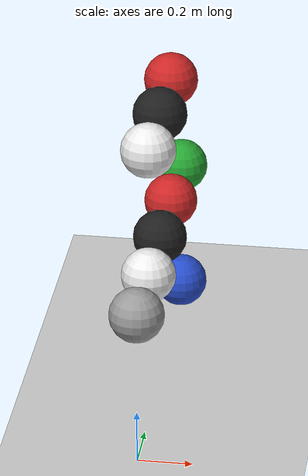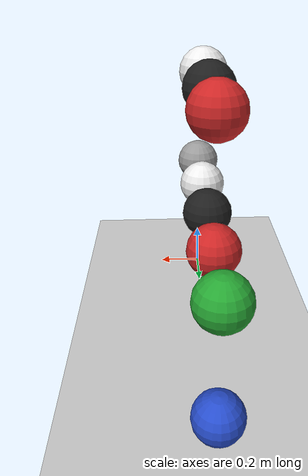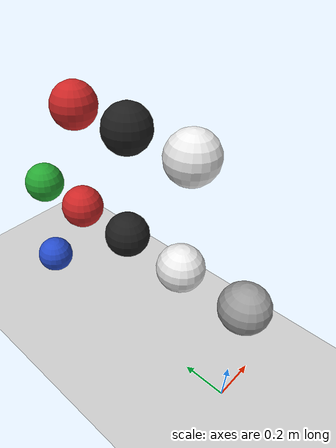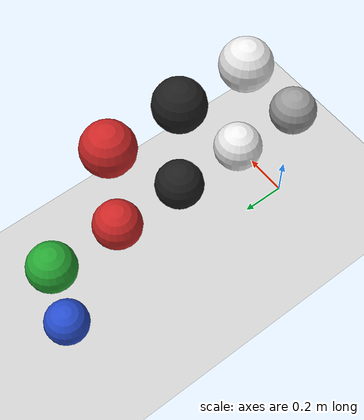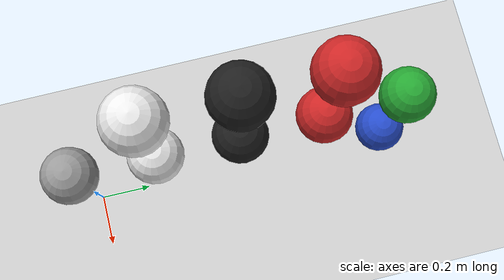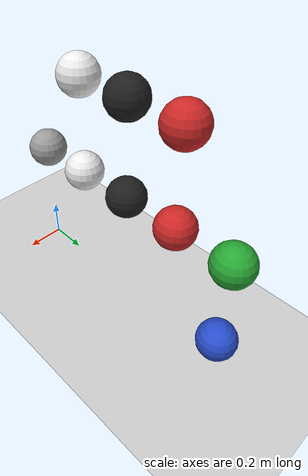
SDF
<?xml version="1.0" ?>
<sdf version="1.4">
  <world name="default">
    <scene>
      <ambient>0.5 0.5 0.5 1</ambient>
      <background>0.5 0.5 0.5 1</background>
      <shadows>false</shadows>
    </scene>
    <include>
      <uri>model://sun</uri>
    </include>
    <include>
      <uri>model://ground_plane</uri>
    </include>
    <physics type="ode">
      <gravity>0.0 0.0 -10.0</gravity>
      <ode>
        <solver>
          <type>quick</type>
          <iters>100</iters>
          <sor>1.3</sor>
        </solver>
        <constraints>
          <cfm>0.0</cfm>
          <erp>1.0</erp>
          <contact_max_correcting_vel>1000.0</contact_max_correcting_vel>
          <contact_surface_layer>0.0</contact_surface_layer>
        </constraints>
      </ode>
      <real_time_update_rate>300</real_time_update_rate>
      <max_step_size>0.001</max_step_size>
    </physics>
    <model name="model_0">
      <pose>0.0 0.0 1.1 0 0.0 0.0</pose>
      <link name="link_1">
        <velocity_decay>
          <linear>0.0</linear>
          <angular>0.0</angular>
        </velocity_decay>
        <pose>0.0 0.0 0.0 0.0 0.0 0.0</pose>
        <inertial>
          <pose>0.0 0.0 -0.5 0.0 0.0 0.0</pose>
          <inertia>
            <ixx>0.01</ixx>
            <ixy>0.0</ixy>
            <ixz>0.0</ixz>
            <iyy>0.01</iyy>
            <iyz>0.0</iyz>
            <izz>0.01</izz>
          </inertia>
          <mass>1.0</mass>
        </inertial>
        <visual name="visual_sphere">
          <pose>0.0 0.0 -0.5 0.0 0.0 0.0</pose>
          <geometry>
            <sphere>
              <radius>0.1</radius>
            </sphere>
          </geometry>
          <material>
            <script><uri>file://media/materials/scripts/gazebo.material</uri><name>Gazebo/Grey</name></script>
          </material>
        </visual>
        <collision name="collision_sphere">
          <pose>0.0 0.0 -0.5 0.0 0.0 0.0</pose>
          <max_contacts>250</max_contacts>
          <geometry>
            <sphere>
              <radius>0.1</radius>
            </sphere>
          </geometry>
        </collision>
        <gravity>true</gravity>
        <self_collide>true</self_collide>
        <kinematic>false</kinematic>
      </link>
      <joint name="joint_0" type="prismatic">
        <parent>world</parent>
        <child>link_1</child>
        <pose>0.0 0.0 0.0 0.0 0.0 0.0</pose>
        <axis>
          <limit>
            <lower>0</lower>
            <upper>0</upper>
          </limit>
          <xyz>0.0 0.0 1.0</xyz>
        </axis>
        <physics>
          <ode>
            <limit>
              <cfm>0.0</cfm>
              <erp>0.2</erp>
            </limit>
          </ode>
        </physics>
      </joint>
      <static>false</static>
    </model>
    <model name="model_1_prismatic">
      <pose>0.0 0.3 1.1 0 0.0 0.0</pose>
      <link name="link_1">
        <velocity_decay>
          <linear>0.0</linear>
          <angular>0.0</angular>
        </velocity_decay>
        <pose>0.0 0.0 0.0 0.0 0.0 0.0</pose>
        <inertial>
          <pose>0.0 0.0 -0.5 0.0 0.0 0.0</pose>
          <inertia>
            <ixx>0.01</ixx>
            <ixy>0.0</ixy>
            <ixz>0.0</ixz>
            <iyy>0.01</iyy>
            <iyz>0.0</iyz>
            <izz>0.01</izz>
          </inertia>
          <mass>1.0</mass>
        </inertial>
        <visual name="visual_sphere">
          <pose>0.0 0.0 -0.5 0.0 0.0 0.0</pose>
          <geometry>
            <sphere>
              <radius>0.1</radius>
            </sphere>
          </geometry>
          <material>
            <script><uri>file://media/materials/scripts/gazebo.material</uri><name>Gazebo/White</name></script>
          </material>
        </visual>
        <collision name="collision_sphere">
          <pose>0.0 0.0 -0.5 0.0 0.0 0.0</pose>
          <max_contacts>250</max_contacts>
          <geometry>
            <sphere>
              <radius>0.1</radius>
            </sphere>
          </geometry>
        </collision>
        <gravity>true</gravity>
        <self_collide>true</self_collide>
        <kinematic>false</kinematic>
      </link>
      <joint name="joint_0" type="prismatic">
        <parent>world</parent>
        <child>link_1</child>
        <pose>0.0 0.0 0.0 0.0 0.0 0.0</pose>
        <axis>
          <limit>
            <lower>0.0</lower>
            <upper>0.0</upper>
          </limit>
          <xyz>0.0 0.0 1.0</xyz>
        </axis>
        <physics>
          <ode>
            <limit>
              <cfm>3.0</cfm>
              <erp>1.0</erp>
            </limit>
          </ode>
        </physics>
      </joint>
      <static>false</static>
    </model>
    <model name="model_1_revolute">
      <pose>-1.0 0.3 1.1 0 0.0 0.0</pose>
      <link name="link_1">
        <velocity_decay>
          <linear>0.0</linear>
          <angular>0.0</angular>
        </velocity_decay>
        <pose>0.0 0.0 0.0 0.0 0.0 0.0</pose>
        <inertial>
          <pose>1.0 0.0 0 0.0 0.0 0.0</pose>
          <inertia>
            <ixx>0.0001</ixx>
            <ixy>0.0</ixy>
            <ixz>0.0</ixz>
            <iyy>0.0001</iyy>
            <iyz>0.0</iyz>
            <izz>0.0001</izz>
          </inertia>
          <mass>1.0</mass>
        </inertial>
        <visual name="visual_sphere">
          <pose>1.0 0.0 0 0.0 0.0 0.0</pose>
          <geometry>
            <sphere>
              <radius>0.1</radius>
            </sphere>
          </geometry>
          <material>
            <script><uri>file://media/materials/scripts/gazebo.material</uri><name>Gazebo/White</name></script>
          </material>
        </visual>
        <collision name="collision_sphere">
          <pose>1.0 0.0 0 0.0 0.0 0.0</pose>
          <max_contacts>250</max_contacts>
          <geometry>
            <sphere>
              <radius>0.1</radius>
            </sphere>
          </geometry>
        </collision>
        <gravity>true</gravity>
        <self_collide>true</self_collide>
        <kinematic>false</kinematic>
      </link>
      <joint name="joint_0" type="revolute">
        <parent>world</parent>
        <child>link_1</child>
        <pose>0.0 0.0 0.0 0.0 0.0 0.0</pose>
        <axis>
          <limit>
            <lower>0.0</lower>
            <upper>0.0</upper>
          </limit>
          <xyz>0.0 1.0 0.0</xyz>
        </axis>
        <physics>
          <ode>
            <limit>
              <cfm>3.0</cfm>
              <erp>1.0</erp>
            </limit>
          </ode>
        </physics>
      </joint>
      <static>false</static>
    </model>
    <model name="model_2_prismatic">
      <pose>0.0 0.6 1.1 0 0.0 0.0</pose>
      <link name="link_1">
        <pose>0.0 0.0 0.0 0.0 0.0 0.0</pose>
        <inertial>
          <pose>0.0 0.0 -0.5 0.0 0.0 0.0</pose>
          <inertia>
            <ixx>0.01</ixx>
            <ixy>0.0</ixy>
            <ixz>0.0</ixz>
            <iyy>0.01</iyy>
            <iyz>0.0</iyz>
            <izz>0.01</izz>
          </inertia>
          <mass>1.0</mass>
        </inertial>
        <visual name="visual_sphere">
          <pose>0.0 0.0 -0.5 0.0 0.0 0.0</pose>
          <geometry>
            <sphere>
              <radius>0.1</radius>
            </sphere>
          </geometry>
          <material>
            <script><uri>file://media/materials/scripts/gazebo.material</uri><name>Gazebo/FlatBlack</name></script>
          </material>
        </visual>
        <collision name="collision_sphere">
          <pose>0.0 0.0 -0.5 0.0 0.0 0.0</pose>
          <max_contacts>250</max_contacts>
          <geometry>
            <sphere>
              <radius>0.1</radius>
            </sphere>
          </geometry>
        </collision>
        <gravity>true</gravity>
        <self_collide>true</self_collide>
        <kinematic>false</kinematic>
      </link>
      <joint name="joint_0" type="prismatic">
        <parent>world</parent>
        <child>link_1</child>
        <pose>0.0 0.0 0.0 0.0 0.0 0.0</pose>
        <axis>
          <limit>
            <lower>0</lower>
            <upper>0</upper>
          </limit>
          <xyz>0.0 0.0 1.0</xyz>
        </axis>
        <physics>
          <ode>
            <limit>
              <cfm>6.0</cfm>
              <erp>1.0</erp>
            </limit>
          </ode>
        </physics>
      </joint>
      <static>false</static>
    </model>
    <model name="model_2_revolute">
      <pose>-1.0 0.6 1.1 0 0.0 0.0</pose>
      <link name="link_1">
        <pose>0.0 0.0 0.0 0.0 0.0 0.0</pose>
        <inertial>
          <pose>1.0 0.0 0 0.0 0.0 0.0</pose>
          <inertia>
            <ixx>0.01</ixx>
            <ixy>0.0</ixy>
            <ixz>0.0</ixz>
            <iyy>0.01</iyy>
            <iyz>0.0</iyz>
            <izz>0.01</izz>
          </inertia>
          <mass>1.0</mass>
        </inertial>
        <visual name="visual_sphere">
          <pose>1.0 0.0 0 0.0 0.0 0.0</pose>
          <geometry>
            <sphere>
              <radius>0.1</radius>
            </sphere>
          </geometry>
          <material>
            <script><uri>file://media/materials/scripts/gazebo.material</uri><name>Gazebo/FlatBlack</name></script>
          </material>
        </visual>
        <collision name="collision_sphere">
          <pose>1.0 0.0 0 0.0 0.0 0.0</pose>
          <max_contacts>250</max_contacts>
          <geometry>
            <sphere>
              <radius>0.1</radius>
            </sphere>
          </geometry>
        </collision>
        <gravity>true</gravity>
        <self_collide>true</self_collide>
        <kinematic>false</kinematic>
      </link>
      <joint name="joint_0" type="revolute">
        <parent>world</parent>
        <child>link_1</child>
        <pose>0.0 0.0 0.0 0.0 0.0 0.0</pose>
        <axis>
          <limit>
            <lower>0</lower>
            <upper>0</upper>
          </limit>
          <xyz>0.0 1.0 0.0</xyz>
        </axis>
        <physics>
          <ode>
            <limit>
              <cfm>6.0</cfm>
              <erp>1.0</erp>
            </limit>
          </ode>
        </physics>
      </joint>
      <static>false</static>
    </model>
    <model name="model_3_prismatic">
      <pose>0.0 0.9 1.1 0 0.0 0.0</pose>
      <link name="link_1">
        <pose>0.0 0.0 0.0 0.0 0.0 0.0</pose>
        <inertial>
          <pose>0.0 0.0 -0.5 0.0 0.0 0.0</pose>
          <inertia>
            <ixx>0.01</ixx>
            <ixy>0.0</ixy>
            <ixz>0.0</ixz>
            <iyy>0.01</iyy>
            <iyz>0.0</iyz>
            <izz>0.01</izz>
          </inertia>
          <mass>1.0</mass>
        </inertial>
        <visual name="visual_sphere">
          <pose>0.0 0.0 -0.5 0.0 0.0 0.0</pose>
          <geometry>
            <sphere>
              <radius>0.1</radius>
            </sphere>
          </geometry>
          <material>
            <script><uri>file://media/materials/scripts/gazebo.material</uri><name>Gazebo/Red</name></script>
          </material>
        </visual>
        <collision name="collision_sphere">
          <pose>0.0 0.0 -0.5 0.0 0.0 0.0</pose>
          <max_contacts>250</max_contacts>
          <geometry>
            <sphere>
              <radius>0.1</radius>
            </sphere>
          </geometry>
        </collision>
        <gravity>true</gravity>
        <self_collide>true</self_collide>
        <kinematic>false</kinematic>
      </link>
      <joint name="joint_0" type="prismatic">
        <parent>world</parent>
        <child>link_1</child>
        <pose>0.0 0.0 0.0 0.0 0.0 0.0</pose>
        <axis>
          <limit>
            <lower>0</lower>
            <upper>0</upper>
          </limit>
          <xyz>0.0 0.0 1.0</xyz>
        </axis>
        <physics>
          <ode>
            <limit>
              <cfm>9.0</cfm>
              <erp>1.0</erp>
            </limit>
          </ode>
        </physics>
      </joint>
      <static>false</static>
    </model>
    <model name="model_3_revolute">
      <pose>-1.0 0.9 1.1 0 0.0 0.0</pose>
      <link name="link_1">
        <pose>0.0 0.0 0.0 0.0 0.0 0.0</pose>
        <inertial>
          <pose>1.0 0.0 0 0.0 0.0 0.0</pose>
          <inertia>
            <ixx>0.01</ixx>
            <ixy>0.0</ixy>
            <ixz>0.0</ixz>
            <iyy>0.01</iyy>
            <iyz>0.0</iyz>
            <izz>0.01</izz>
          </inertia>
          <mass>1.0</mass>
        </inertial>
        <visual name="visual_sphere">
          <pose>1.0 0.0 0 0.0 0.0 0.0</pose>
          <geometry>
            <sphere>
              <radius>0.1</radius>
            </sphere>
          </geometry>
          <material>
            <script><uri>file://media/materials/scripts/gazebo.material</uri><name>Gazebo/Red</name></script>
          </material>
        </visual>
        <collision name="collision_sphere">
          <pose>1.0 0.0 0 0.0 0.0 0.0</pose>
          <max_contacts>250</max_contacts>
          <geometry>
            <sphere>
              <radius>0.1</radius>
            </sphere>
          </geometry>
        </collision>
        <gravity>true</gravity>
        <self_collide>true</self_collide>
        <kinematic>false</kinematic>
      </link>
      <joint name="joint_0" type="revolute">
        <parent>world</parent>
        <child>link_1</child>
        <pose>0.0 0.0 0.0 0.0 0.0 0.0</pose>
        <axis>
          <limit>
            <lower>0</lower>
            <upper>0</upper>
          </limit>
          <xyz>0.0 1.0 0.0</xyz>
        </axis>
        <physics>
          <ode>
            <limit>
              <cfm>9.0</cfm>
              <erp>1.0</erp>
            </limit>
          </ode>
        </physics>
      </joint>
      <static>false</static>
    </model>
    <model name="model_4_prismatic_wth_plugin">
      <pose>0.0 1.2 1.1 0 0.0 0.0</pose>
      <link name="link_1">
        <pose>0.0 0.0 0.0 0.0 0.0 0.0</pose>
        <inertial>
          <pose>0.0 0.0 -0.5 0.0 0.0 0.0</pose>
          <inertia>
            <ixx>0.01</ixx>
            <ixy>0.0</ixy>
            <ixz>0.0</ixz>
            <iyy>0.01</iyy>
            <iyz>0.0</iyz>
            <izz>0.01</izz>
          </inertia>
          <mass>1.0</mass>
        </inertial>
        <visual name="visual_sphere">
          <pose>0.0 0.0 -0.5 0.0 0.0 0.0</pose>
          <geometry>
            <sphere>
              <radius>0.1</radius>
            </sphere>
          </geometry>
          <material>
            <script><uri>file://media/materials/scripts/gazebo.material</uri><name>Gazebo/Green</name></script>
          </material>
        </visual>
        <collision name="collision_sphere">
          <pose>0.0 0.0 -0.5 0.0 0.0 0.0</pose>
          <max_contacts>250</max_contacts>
          <geometry>
            <sphere>
              <radius>0.1</radius>
            </sphere>
          </geometry>
        </collision>
        <gravity>true</gravity>
        <self_collide>true</self_collide>
        <kinematic>false</kinematic>
      </link>
      <joint name="joint_0" type="prismatic">
        <parent>world</parent>
        <child>link_1</child>
        <pose>0.0 0.0 0.0 0.0 0.0 0.0</pose>
        <axis>
          <limit>
            <lower>-1.0</lower>
            <upper>1.0</upper>
          </limit>
          <xyz>0.0 0.0 1.0</xyz>
        </axis>
      </joint>
      <plugin name="spring_test" filename="libSpringTestPlugin.so">
        <k>111.1111</k>
      </plugin>
      <static>false</static>
    </model>
    <model name="model_5_soft_contact">
      <pose>0.0 1.2 0.0 0 0.0 0.0</pose>
      <link name="link_1">
        <pose>0.0 0.0 0.0 0.0 0.0 0.0</pose>
        <inertial>
          <pose>0.0 0.0 0.05 0.0 0.0 0.0</pose>
          <inertia>
            <ixx>0.01</ixx>
            <ixy>0.0</ixy>
            <ixz>0.0</ixz>
            <iyy>0.01</iyy>
            <iyz>0.0</iyz>
            <izz>0.01</izz>
          </inertia>
          <mass>1.0</mass>
        </inertial>
        <visual name="visual_sphere">
          <pose>0.0 0.0 0.1 0.0 0.0 0.0</pose>
          <geometry>
            <sphere>
              <radius>0.1</radius>
            </sphere>
          </geometry>
          <material>
            <script><uri>file://media/materials/scripts/gazebo.material</uri><name>Gazebo/Blue</name></script>
          </material>
        </visual>
        <collision name="collision_sphere">
          <pose>0.0 0.0 0.1 0.0 0.0 0.0</pose>
          <max_contacts>250</max_contacts>
          <geometry>
            <sphere>
              <radius>0.1</radius>
            </sphere>
          </geometry>
          <surface>
            <friction>
              <ode>
                <mu>0.2</mu>
                <mu2>0.2</mu2>
                <fdir1>1.0 0 0</fdir1>
                <slip1>0</slip1>
                <slip2>0</slip2>
              </ode>
            </friction>
            <contact>
              <ode>
                <kp>111.1111</kp>
                <kd>0.0</kd>
                <max_vel>10000.0</max_vel>
                <min_depth>0.0</min_depth>
              </ode>
            </contact>
          </surface>
        </collision>
        <gravity>true</gravity>
        <self_collide>true</self_collide>
        <kinematic>false</kinematic>
      </link>
      <static>false</static>
    </model>
  </world>
</sdf>
